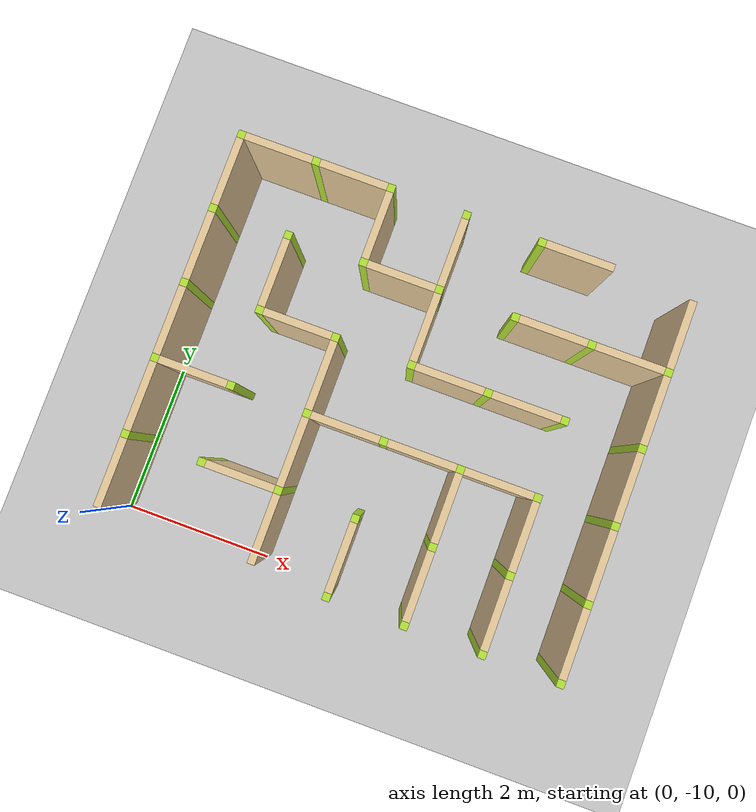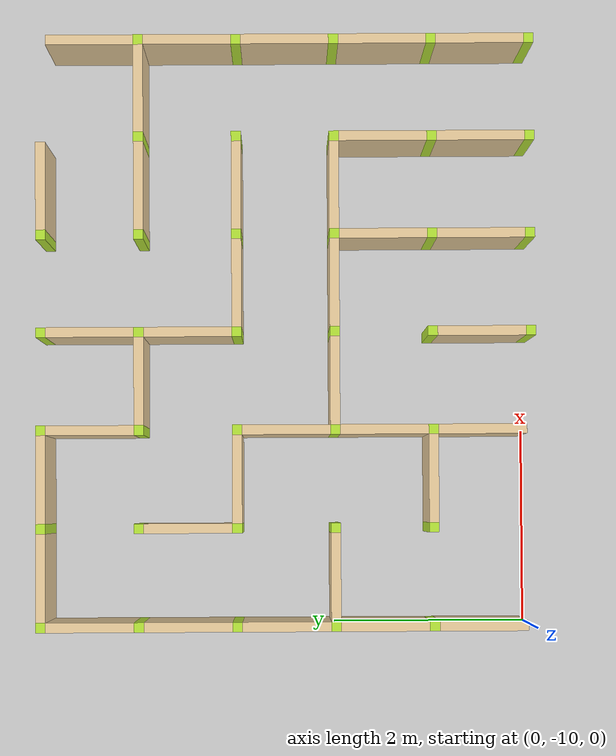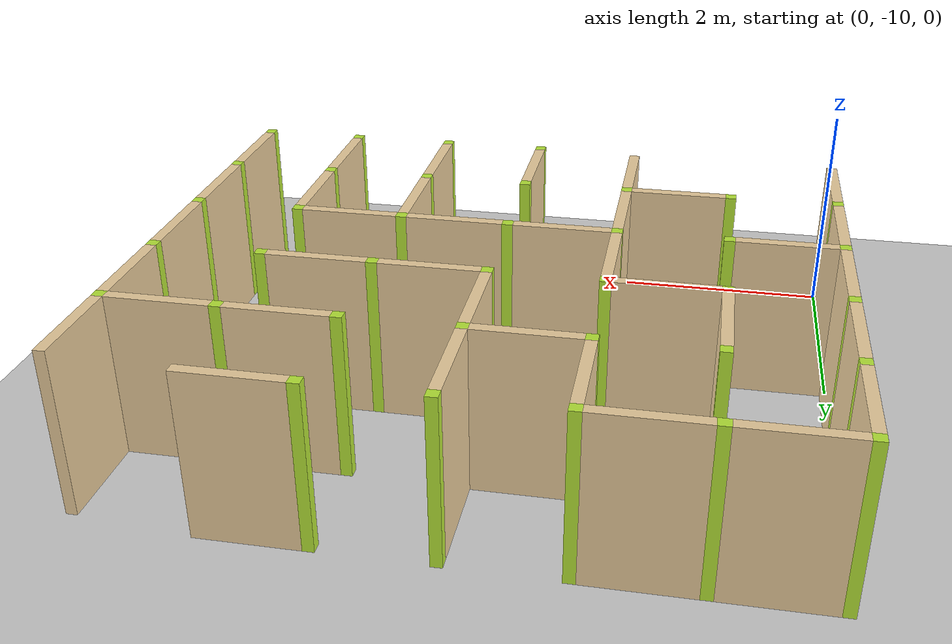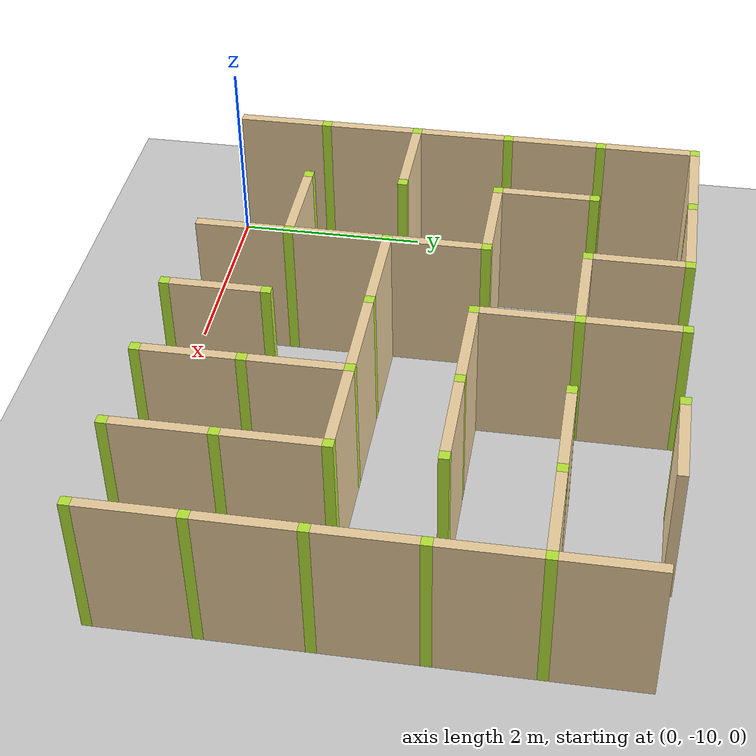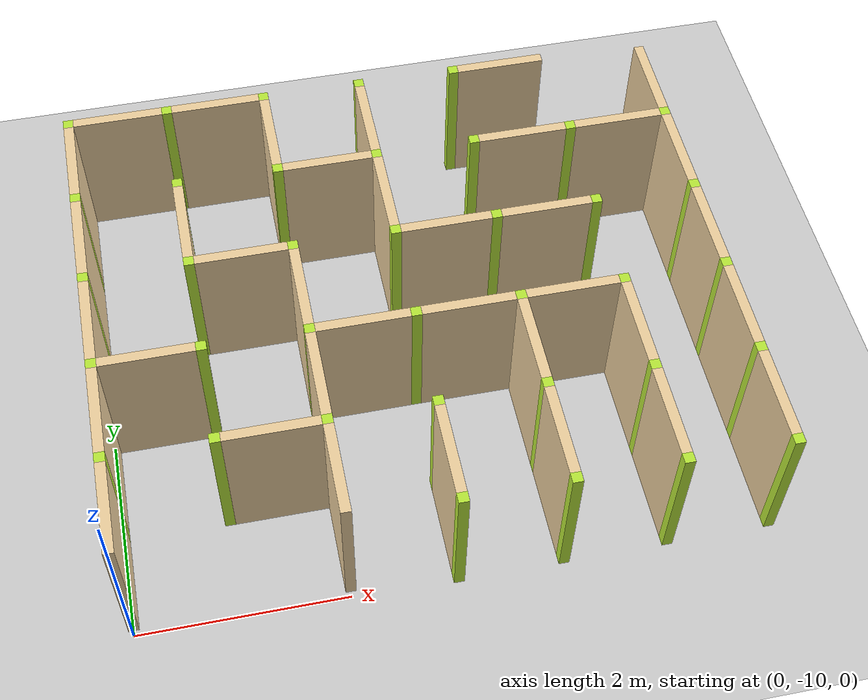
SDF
<sdf version="1.4">
 <world name="maze_world">
  <model name="ground">
   <static>true</static>
   <link name="ground_link">
    <collision name="collision1"><geometry><plane><normal>0 0 1</normal></plane></geometry></collision>
    <visual name="visual1"><geometry><plane><normal>0 0 1</normal><size>100 100</size></plane></geometry></visual>
   </link>
  </model>
  <model name="Untitled">
   <link name="Wall_0_5_h">
    <collision name="Wall_0_Collision">
     <geometry><box><size>0.9 0.1 1.5</size></box></geometry>
     <pose>0 0 0.75 0 -0 0</pose>
    </collision>
    <visual name="Wall_0_Visual">
     <pose>0 0 0.75 0 -0 0</pose>
     <geometry><box><size>0.9 0.1 1.5</size></box></geometry>
     <material>
      <script><uri>file://media/materials/scripts/gazebo.material</uri><name>Gazebo/Grey</name></script>
      <ambient>0.921569 0.807843 0.615686 1</ambient>
     </material>
     <meta><layer>0</layer></meta>
    </visual>
    <pose>0.5 -5 0 0 -0 0</pose>
   </link>
   <link name="Wall_0_5_v">
    <collision name="Wall_0_Collision">
     <geometry><box><size>0.9 0.1 1.5</size></box></geometry>
     <pose>0 0 0.75 0 -0 0</pose>
    </collision>
    <visual name="Wall_0_Visual">
     <pose>0 0 0.75 0 -0 0</pose>
     <geometry><box><size>0.9 0.1 1.5</size></box></geometry>
     <material>
      <script><uri>file://media/materials/scripts/gazebo.material</uri><name>Gazebo/Grey</name></script>
      <ambient>0.921569 0.807843 0.615686 1</ambient>
     </material>
     <meta><layer>0</layer></meta>
    </visual>
    <pose>0 -5.5 0 0 -0 1.5708</pose>
   </link>
   <link name="Joint_0_-5">
    <collision name="Wall_2_Collision">
     <geometry><box><size>0.1 0.1 1.5</size></box></geometry>
     <pose>0 0 0.75 0 -0 0</pose>
    </collision>
    <visual name="Wall_2_Visual">
     <pose>0 0 0.75 0 -0 0</pose>
     <geometry><box><size>0.1 0.1 1.5</size></box></geometry>
     <material>
      <script><uri>file://media/materials/scripts/gazebo.material</uri><name>Gazebo/Grey</name></script>
      <ambient>0.721569 0.907843 0.215686 1</ambient>
     </material>
     <meta><layer>0</layer></meta>
    </visual>
    <pose>0 -5 0 0 -0 0</pose>
   </link>
   <link name="Wall_1_5_h">
    <collision name="Wall_0_Collision">
     <geometry><box><size>0.9 0.1 1.5</size></box></geometry>
     <pose>0 0 0.75 0 -0 0</pose>
    </collision>
    <visual name="Wall_0_Visual">
     <pose>0 0 0.75 0 -0 0</pose>
     <geometry><box><size>0.9 0.1 1.5</size></box></geometry>
     <material>
      <script><uri>file://media/materials/scripts/gazebo.material</uri><name>Gazebo/Grey</name></script>
      <ambient>0.921569 0.807843 0.615686 1</ambient>
     </material>
     <meta><layer>0</layer></meta>
    </visual>
    <pose>1.5 -5 0 0 -0 0</pose>
   </link>
   <link name="Joint_1_-5">
    <collision name="Wall_2_Collision">
     <geometry><box><size>0.1 0.1 1.5</size></box></geometry>
     <pose>0 0 0.75 0 -0 0</pose>
    </collision>
    <visual name="Wall_2_Visual">
     <pose>0 0 0.75 0 -0 0</pose>
     <geometry><box><size>0.1 0.1 1.5</size></box></geometry>
     <material>
      <script><uri>file://media/materials/scripts/gazebo.material</uri><name>Gazebo/Grey</name></script>
      <ambient>0.721569 0.907843 0.215686 1</ambient>
     </material>
     <meta><layer>0</layer></meta>
    </visual>
    <pose>1 -5 0 0 -0 0</pose>
   </link>
   <link name="Wall_2_5_v">
    <collision name="Wall_0_Collision">
     <geometry><box><size>0.9 0.1 1.5</size></box></geometry>
     <pose>0 0 0.75 0 -0 0</pose>
    </collision>
    <visual name="Wall_0_Visual">
     <pose>0 0 0.75 0 -0 0</pose>
     <geometry><box><size>0.9 0.1 1.5</size></box></geometry>
     <material>
      <script><uri>file://media/materials/scripts/gazebo.material</uri><name>Gazebo/Grey</name></script>
      <ambient>0.921569 0.807843 0.615686 1</ambient>
     </material>
     <meta><layer>0</layer></meta>
    </visual>
    <pose>2 -5.5 0 0 -0 1.5708</pose>
   </link>
   <link name="Joint_2_-5">
    <collision name="Wall_2_Collision">
     <geometry><box><size>0.1 0.1 1.5</size></box></geometry>
     <pose>0 0 0.75 0 -0 0</pose>
    </collision>
    <visual name="Wall_2_Visual">
     <pose>0 0 0.75 0 -0 0</pose>
     <geometry><box><size>0.1 0.1 1.5</size></box></geometry>
     <material>
      <script><uri>file://media/materials/scripts/gazebo.material</uri><name>Gazebo/Grey</name></script>
      <ambient>0.721569 0.907843 0.215686 1</ambient>
     </material>
     <meta><layer>0</layer></meta>
    </visual>
    <pose>2 -5 0 0 -0 0</pose>
   </link>
   <link name="Wall_3_5_v">
    <collision name="Wall_0_Collision">
     <geometry><box><size>0.9 0.1 1.5</size></box></geometry>
     <pose>0 0 0.75 0 -0 0</pose>
    </collision>
    <visual name="Wall_0_Visual">
     <pose>0 0 0.75 0 -0 0</pose>
     <geometry><box><size>0.9 0.1 1.5</size></box></geometry>
     <material>
      <script><uri>file://media/materials/scripts/gazebo.material</uri><name>Gazebo/Grey</name></script>
      <ambient>0.921569 0.807843 0.615686 1</ambient>
     </material>
     <meta><layer>0</layer></meta>
    </visual>
    <pose>3 -5.5 0 0 -0 1.5708</pose>
   </link>
   <link name="Joint_3_-5">
    <collision name="Wall_2_Collision">
     <geometry><box><size>0.1 0.1 1.5</size></box></geometry>
     <pose>0 0 0.75 0 -0 0</pose>
    </collision>
    <visual name="Wall_2_Visual">
     <pose>0 0 0.75 0 -0 0</pose>
     <geometry><box><size>0.1 0.1 1.5</size></box></geometry>
     <material>
      <script><uri>file://media/materials/scripts/gazebo.material</uri><name>Gazebo/Grey</name></script>
      <ambient>0.721569 0.907843 0.215686 1</ambient>
     </material>
     <meta><layer>0</layer></meta>
    </visual>
    <pose>3 -5 0 0 -0 0</pose>
   </link>
   <link name="Wall_4_5_h">
    <collision name="Wall_0_Collision">
     <geometry><box><size>0.9 0.1 1.5</size></box></geometry>
     <pose>0 0 0.75 0 -0 0</pose>
    </collision>
    <visual name="Wall_0_Visual">
     <pose>0 0 0.75 0 -0 0</pose>
     <geometry><box><size>0.9 0.1 1.5</size></box></geometry>
     <material>
      <script><uri>file://media/materials/scripts/gazebo.material</uri><name>Gazebo/Grey</name></script>
      <ambient>0.921569 0.807843 0.615686 1</ambient>
     </material>
     <meta><layer>0</layer></meta>
    </visual>
    <pose>4.5 -5 0 0 -0 0</pose>
   </link>
   <link name="Joint_4_-5">
    <collision name="Wall_2_Collision">
     <geometry><box><size>0.1 0.1 1.5</size></box></geometry>
     <pose>0 0 0.75 0 -0 0</pose>
    </collision>
    <visual name="Wall_2_Visual">
     <pose>0 0 0.75 0 -0 0</pose>
     <geometry><box><size>0.1 0.1 1.5</size></box></geometry>
     <material>
      <script><uri>file://media/materials/scripts/gazebo.material</uri><name>Gazebo/Grey</name></script>
      <ambient>0.721569 0.907843 0.215686 1</ambient>
     </material>
     <meta><layer>0</layer></meta>
    </visual>
    <pose>4 -5 0 0 -0 0</pose>
   </link>
   <link name="Wall_6_5_v">
    <collision name="Wall_0_Collision">
     <geometry><box><size>0.9 0.1 1.5</size></box></geometry>
     <pose>0 0 0.75 0 -0 0</pose>
    </collision>
    <visual name="Wall_0_Visual">
     <pose>0 0 0.75 0 -0 0</pose>
     <geometry><box><size>0.9 0.1 1.5</size></box></geometry>
     <material>
      <script><uri>file://media/materials/scripts/gazebo.material</uri><name>Gazebo/Grey</name></script>
      <ambient>0.921569 0.807843 0.615686 1</ambient>
     </material>
     <meta><layer>0</layer></meta>
    </visual>
    <pose>6 -5.5 0 0 -0 1.5708</pose>
   </link>
   <link name="Wall_0_6_v">
    <collision name="Wall_0_Collision">
     <geometry><box><size>0.9 0.1 1.5</size></box></geometry>
     <pose>0 0 0.75 0 -0 0</pose>
    </collision>
    <visual name="Wall_0_Visual">
     <pose>0 0 0.75 0 -0 0</pose>
     <geometry><box><size>0.9 0.1 1.5</size></box></geometry>
     <material>
      <script><uri>file://media/materials/scripts/gazebo.material</uri><name>Gazebo/Grey</name></script>
      <ambient>0.921569 0.807843 0.615686 1</ambient>
     </material>
     <meta><layer>0</layer></meta>
    </visual>
    <pose>0 -6.5 0 0 -0 1.5708</pose>
   </link>
   <link name="Joint_0_-6">
    <collision name="Wall_2_Collision">
     <geometry><box><size>0.1 0.1 1.5</size></box></geometry>
     <pose>0 0 0.75 0 -0 0</pose>
    </collision>
    <visual name="Wall_2_Visual">
     <pose>0 0 0.75 0 -0 0</pose>
     <geometry><box><size>0.1 0.1 1.5</size></box></geometry>
     <material>
      <script><uri>file://media/materials/scripts/gazebo.material</uri><name>Gazebo/Grey</name></script>
      <ambient>0.721569 0.907843 0.215686 1</ambient>
     </material>
     <meta><layer>0</layer></meta>
    </visual>
    <pose>0 -6 0 0 -0 0</pose>
   </link>
   <link name="Wall_1_6_v">
    <collision name="Wall_0_Collision">
     <geometry><box><size>0.9 0.1 1.5</size></box></geometry>
     <pose>0 0 0.75 0 -0 0</pose>
    </collision>
    <visual name="Wall_0_Visual">
     <pose>0 0 0.75 0 -0 0</pose>
     <geometry><box><size>0.9 0.1 1.5</size></box></geometry>
     <material>
      <script><uri>file://media/materials/scripts/gazebo.material</uri><name>Gazebo/Grey</name></script>
      <ambient>0.921569 0.807843 0.615686 1</ambient>
     </material>
     <meta><layer>0</layer></meta>
    </visual>
    <pose>1 -6.5 0 0 -0 1.5708</pose>
   </link>
   <link name="Joint_1_-6">
    <collision name="Wall_2_Collision">
     <geometry><box><size>0.1 0.1 1.5</size></box></geometry>
     <pose>0 0 0.75 0 -0 0</pose>
    </collision>
    <visual name="Wall_2_Visual">
     <pose>0 0 0.75 0 -0 0</pose>
     <geometry><box><size>0.1 0.1 1.5</size></box></geometry>
     <material>
      <script><uri>file://media/materials/scripts/gazebo.material</uri><name>Gazebo/Grey</name></script>
      <ambient>0.721569 0.907843 0.215686 1</ambient>
     </material>
     <meta><layer>0</layer></meta>
    </visual>
    <pose>1 -6 0 0 -0 0</pose>
   </link>
   <link name="Wall_2_6_h">
    <collision name="Wall_0_Collision">
     <geometry><box><size>0.9 0.1 1.5</size></box></geometry>
     <pose>0 0 0.75 0 -0 0</pose>
    </collision>
    <visual name="Wall_0_Visual">
     <pose>0 0 0.75 0 -0 0</pose>
     <geometry><box><size>0.9 0.1 1.5</size></box></geometry>
     <material>
      <script><uri>file://media/materials/scripts/gazebo.material</uri><name>Gazebo/Grey</name></script>
      <ambient>0.921569 0.807843 0.615686 1</ambient>
     </material>
     <meta><layer>0</layer></meta>
    </visual>
    <pose>2.5 -6 0 0 -0 0</pose>
   </link>
   <link name="Joint_2_-6">
    <collision name="Wall_2_Collision">
     <geometry><box><size>0.1 0.1 1.5</size></box></geometry>
     <pose>0 0 0.75 0 -0 0</pose>
    </collision>
    <visual name="Wall_2_Visual">
     <pose>0 0 0.75 0 -0 0</pose>
     <geometry><box><size>0.1 0.1 1.5</size></box></geometry>
     <material>
      <script><uri>file://media/materials/scripts/gazebo.material</uri><name>Gazebo/Grey</name></script>
      <ambient>0.721569 0.907843 0.215686 1</ambient>
     </material>
     <meta><layer>0</layer></meta>
    </visual>
    <pose>2 -6 0 0 -0 0</pose>
   </link>
   <link name="Wall_3_6_v">
    <collision name="Wall_0_Collision">
     <geometry><box><size>0.9 0.1 1.5</size></box></geometry>
     <pose>0 0 0.75 0 -0 0</pose>
    </collision>
    <visual name="Wall_0_Visual">
     <pose>0 0 0.75 0 -0 0</pose>
     <geometry><box><size>0.9 0.1 1.5</size></box></geometry>
     <material>
      <script><uri>file://media/materials/scripts/gazebo.material</uri><name>Gazebo/Grey</name></script>
      <ambient>0.921569 0.807843 0.615686 1</ambient>
     </material>
     <meta><layer>0</layer></meta>
    </visual>
    <pose>3 -6.5 0 0 -0 1.5708</pose>
   </link>
   <link name="Joint_3_-6">
    <collision name="Wall_2_Collision">
     <geometry><box><size>0.1 0.1 1.5</size></box></geometry>
     <pose>0 0 0.75 0 -0 0</pose>
    </collision>
    <visual name="Wall_2_Visual">
     <pose>0 0 0.75 0 -0 0</pose>
     <geometry><box><size>0.1 0.1 1.5</size></box></geometry>
     <material>
      <script><uri>file://media/materials/scripts/gazebo.material</uri><name>Gazebo/Grey</name></script>
      <ambient>0.721569 0.907843 0.215686 1</ambient>
     </material>
     <meta><layer>0</layer></meta>
    </visual>
    <pose>3 -6 0 0 -0 0</pose>
   </link>
   <link name="Wall_4_6_h">
    <collision name="Wall_0_Collision">
     <geometry><box><size>0.9 0.1 1.5</size></box></geometry>
     <pose>0 0 0.75 0 -0 0</pose>
    </collision>
    <visual name="Wall_0_Visual">
     <pose>0 0 0.75 0 -0 0</pose>
     <geometry><box><size>0.9 0.1 1.5</size></box></geometry>
     <material>
      <script><uri>file://media/materials/scripts/gazebo.material</uri><name>Gazebo/Grey</name></script>
      <ambient>0.921569 0.807843 0.615686 1</ambient>
     </material>
     <meta><layer>0</layer></meta>
    </visual>
    <pose>4.5 -6 0 0 -0 0</pose>
   </link>
   <link name="Joint_4_-6">
    <collision name="Wall_2_Collision">
     <geometry><box><size>0.1 0.1 1.5</size></box></geometry>
     <pose>0 0 0.75 0 -0 0</pose>
    </collision>
    <visual name="Wall_2_Visual">
     <pose>0 0 0.75 0 -0 0</pose>
     <geometry><box><size>0.1 0.1 1.5</size></box></geometry>
     <material>
      <script><uri>file://media/materials/scripts/gazebo.material</uri><name>Gazebo/Grey</name></script>
      <ambient>0.721569 0.907843 0.215686 1</ambient>
     </material>
     <meta><layer>0</layer></meta>
    </visual>
    <pose>4 -6 0 0 -0 0</pose>
   </link>
   <link name="Wall_5_6_h">
    <collision name="Wall_0_Collision">
     <geometry><box><size>0.9 0.1 1.5</size></box></geometry>
     <pose>0 0 0.75 0 -0 0</pose>
    </collision>
    <visual name="Wall_0_Visual">
     <pose>0 0 0.75 0 -0 0</pose>
     <geometry><box><size>0.9 0.1 1.5</size></box></geometry>
     <material>
      <script><uri>file://media/materials/scripts/gazebo.material</uri><name>Gazebo/Grey</name></script>
      <ambient>0.921569 0.807843 0.615686 1</ambient>
     </material>
     <meta><layer>0</layer></meta>
    </visual>
    <pose>5.5 -6 0 0 -0 0</pose>
   </link>
   <link name="Joint_5_-6">
    <collision name="Wall_2_Collision">
     <geometry><box><size>0.1 0.1 1.5</size></box></geometry>
     <pose>0 0 0.75 0 -0 0</pose>
    </collision>
    <visual name="Wall_2_Visual">
     <pose>0 0 0.75 0 -0 0</pose>
     <geometry><box><size>0.1 0.1 1.5</size></box></geometry>
     <material>
      <script><uri>file://media/materials/scripts/gazebo.material</uri><name>Gazebo/Grey</name></script>
      <ambient>0.721569 0.907843 0.215686 1</ambient>
     </material>
     <meta><layer>0</layer></meta>
    </visual>
    <pose>5 -6 0 0 -0 0</pose>
   </link>
   <link name="Wall_6_6_v">
    <collision name="Wall_0_Collision">
     <geometry><box><size>0.9 0.1 1.5</size></box></geometry>
     <pose>0 0 0.75 0 -0 0</pose>
    </collision>
    <visual name="Wall_0_Visual">
     <pose>0 0 0.75 0 -0 0</pose>
     <geometry><box><size>0.9 0.1 1.5</size></box></geometry>
     <material>
      <script><uri>file://media/materials/scripts/gazebo.material</uri><name>Gazebo/Grey</name></script>
      <ambient>0.921569 0.807843 0.615686 1</ambient>
     </material>
     <meta><layer>0</layer></meta>
    </visual>
    <pose>6 -6.5 0 0 -0 1.5708</pose>
   </link>
   <link name="Joint_6_-6">
    <collision name="Wall_2_Collision">
     <geometry><box><size>0.1 0.1 1.5</size></box></geometry>
     <pose>0 0 0.75 0 -0 0</pose>
    </collision>
    <visual name="Wall_2_Visual">
     <pose>0 0 0.75 0 -0 0</pose>
     <geometry><box><size>0.1 0.1 1.5</size></box></geometry>
     <material>
      <script><uri>file://media/materials/scripts/gazebo.material</uri><name>Gazebo/Grey</name></script>
      <ambient>0.721569 0.907843 0.215686 1</ambient>
     </material>
     <meta><layer>0</layer></meta>
    </visual>
    <pose>6 -6 0 0 -0 0</pose>
   </link>
   <link name="Wall_0_7_v">
    <collision name="Wall_0_Collision">
     <geometry><box><size>0.9 0.1 1.5</size></box></geometry>
     <pose>0 0 0.75 0 -0 0</pose>
    </collision>
    <visual name="Wall_0_Visual">
     <pose>0 0 0.75 0 -0 0</pose>
     <geometry><box><size>0.9 0.1 1.5</size></box></geometry>
     <material>
      <script><uri>file://media/materials/scripts/gazebo.material</uri><name>Gazebo/Grey</name></script>
      <ambient>0.921569 0.807843 0.615686 1</ambient>
     </material>
     <meta><layer>0</layer></meta>
    </visual>
    <pose>0 -7.5 0 0 -0 1.5708</pose>
   </link>
   <link name="Joint_0_-7">
    <collision name="Wall_2_Collision">
     <geometry><box><size>0.1 0.1 1.5</size></box></geometry>
     <pose>0 0 0.75 0 -0 0</pose>
    </collision>
    <visual name="Wall_2_Visual">
     <pose>0 0 0.75 0 -0 0</pose>
     <geometry><box><size>0.1 0.1 1.5</size></box></geometry>
     <material>
      <script><uri>file://media/materials/scripts/gazebo.material</uri><name>Gazebo/Grey</name></script>
      <ambient>0.721569 0.907843 0.215686 1</ambient>
     </material>
     <meta><layer>0</layer></meta>
    </visual>
    <pose>0 -7 0 0 -0 0</pose>
   </link>
   <link name="Wall_1_7_h">
    <collision name="Wall_0_Collision">
     <geometry><box><size>0.9 0.1 1.5</size></box></geometry>
     <pose>0 0 0.75 0 -0 0</pose>
    </collision>
    <visual name="Wall_0_Visual">
     <pose>0 0 0.75 0 -0 0</pose>
     <geometry><box><size>0.9 0.1 1.5</size></box></geometry>
     <material>
      <script><uri>file://media/materials/scripts/gazebo.material</uri><name>Gazebo/Grey</name></script>
      <ambient>0.921569 0.807843 0.615686 1</ambient>
     </material>
     <meta><layer>0</layer></meta>
    </visual>
    <pose>1.5 -7 0 0 -0 0</pose>
   </link>
   <link name="Joint_1_-7">
    <collision name="Wall_2_Collision">
     <geometry><box><size>0.1 0.1 1.5</size></box></geometry>
     <pose>0 0 0.75 0 -0 0</pose>
    </collision>
    <visual name="Wall_2_Visual">
     <pose>0 0 0.75 0 -0 0</pose>
     <geometry><box><size>0.1 0.1 1.5</size></box></geometry>
     <material>
      <script><uri>file://media/materials/scripts/gazebo.material</uri><name>Gazebo/Grey</name></script>
      <ambient>0.721569 0.907843 0.215686 1</ambient>
     </material>
     <meta><layer>0</layer></meta>
    </visual>
    <pose>1 -7 0 0 -0 0</pose>
   </link>
   <link name="Wall_2_7_v">
    <collision name="Wall_0_Collision">
     <geometry><box><size>0.9 0.1 1.5</size></box></geometry>
     <pose>0 0 0.75 0 -0 0</pose>
    </collision>
    <visual name="Wall_0_Visual">
     <pose>0 0 0.75 0 -0 0</pose>
     <geometry><box><size>0.9 0.1 1.5</size></box></geometry>
     <material>
      <script><uri>file://media/materials/scripts/gazebo.material</uri><name>Gazebo/Grey</name></script>
      <ambient>0.921569 0.807843 0.615686 1</ambient>
     </material>
     <meta><layer>0</layer></meta>
    </visual>
    <pose>2 -7.5 0 0 -0 1.5708</pose>
   </link>
   <link name="Joint_2_-7">
    <collision name="Wall_2_Collision">
     <geometry><box><size>0.1 0.1 1.5</size></box></geometry>
     <pose>0 0 0.75 0 -0 0</pose>
    </collision>
    <visual name="Wall_2_Visual">
     <pose>0 0 0.75 0 -0 0</pose>
     <geometry><box><size>0.1 0.1 1.5</size></box></geometry>
     <material>
      <script><uri>file://media/materials/scripts/gazebo.material</uri><name>Gazebo/Grey</name></script>
      <ambient>0.721569 0.907843 0.215686 1</ambient>
     </material>
     <meta><layer>0</layer></meta>
    </visual>
    <pose>2 -7 0 0 -0 0</pose>
   </link>
   <link name="Wall_3_7_h">
    <collision name="Wall_0_Collision">
     <geometry><box><size>0.9 0.1 1.5</size></box></geometry>
     <pose>0 0 0.75 0 -0 0</pose>
    </collision>
    <visual name="Wall_0_Visual">
     <pose>0 0 0.75 0 -0 0</pose>
     <geometry><box><size>0.9 0.1 1.5</size></box></geometry>
     <material>
      <script><uri>file://media/materials/scripts/gazebo.material</uri><name>Gazebo/Grey</name></script>
      <ambient>0.921569 0.807843 0.615686 1</ambient>
     </material>
     <meta><layer>0</layer></meta>
    </visual>
    <pose>3.5 -7 0 0 -0 0</pose>
   </link>
   <link name="Joint_3_-7">
    <collision name="Wall_2_Collision">
     <geometry><box><size>0.1 0.1 1.5</size></box></geometry>
     <pose>0 0 0.75 0 -0 0</pose>
    </collision>
    <visual name="Wall_2_Visual">
     <pose>0 0 0.75 0 -0 0</pose>
     <geometry><box><size>0.1 0.1 1.5</size></box></geometry>
     <material>
      <script><uri>file://media/materials/scripts/gazebo.material</uri><name>Gazebo/Grey</name></script>
      <ambient>0.721569 0.907843 0.215686 1</ambient>
     </material>
     <meta><layer>0</layer></meta>
    </visual>
    <pose>3 -7 0 0 -0 0</pose>
   </link>
   <link name="Wall_4_7_h">
    <collision name="Wall_0_Collision">
     <geometry><box><size>0.9 0.1 1.5</size></box></geometry>
     <pose>0 0 0.75 0 -0 0</pose>
    </collision>
    <visual name="Wall_0_Visual">
     <pose>0 0 0.75 0 -0 0</pose>
     <geometry><box><size>0.9 0.1 1.5</size></box></geometry>
     <material>
      <script><uri>file://media/materials/scripts/gazebo.material</uri><name>Gazebo/Grey</name></script>
      <ambient>0.921569 0.807843 0.615686 1</ambient>
     </material>
     <meta><layer>0</layer></meta>
    </visual>
    <pose>4.5 -7 0 0 -0 0</pose>
   </link>
   <link name="Joint_4_-7">
    <collision name="Wall_2_Collision">
     <geometry><box><size>0.1 0.1 1.5</size></box></geometry>
     <pose>0 0 0.75 0 -0 0</pose>
    </collision>
    <visual name="Wall_2_Visual">
     <pose>0 0 0.75 0 -0 0</pose>
     <geometry><box><size>0.1 0.1 1.5</size></box></geometry>
     <material>
      <script><uri>file://media/materials/scripts/gazebo.material</uri><name>Gazebo/Grey</name></script>
      <ambient>0.721569 0.907843 0.215686 1</ambient>
     </material>
     <meta><layer>0</layer></meta>
    </visual>
    <pose>4 -7 0 0 -0 0</pose>
   </link>
   <link name="Joint_5_-7">
    <collision name="Wall_2_Collision">
     <geometry><box><size>0.1 0.1 1.5</size></box></geometry>
     <pose>0 0 0.75 0 -0 0</pose>
    </collision>
    <visual name="Wall_2_Visual">
     <pose>0 0 0.75 0 -0 0</pose>
     <geometry><box><size>0.1 0.1 1.5</size></box></geometry>
     <material>
      <script><uri>file://media/materials/scripts/gazebo.material</uri><name>Gazebo/Grey</name></script>
      <ambient>0.721569 0.907843 0.215686 1</ambient>
     </material>
     <meta><layer>0</layer></meta>
    </visual>
    <pose>5 -7 0 0 -0 0</pose>
   </link>
   <link name="Wall_6_7_v">
    <collision name="Wall_0_Collision">
     <geometry><box><size>0.9 0.1 1.5</size></box></geometry>
     <pose>0 0 0.75 0 -0 0</pose>
    </collision>
    <visual name="Wall_0_Visual">
     <pose>0 0 0.75 0 -0 0</pose>
     <geometry><box><size>0.9 0.1 1.5</size></box></geometry>
     <material>
      <script><uri>file://media/materials/scripts/gazebo.material</uri><name>Gazebo/Grey</name></script>
      <ambient>0.921569 0.807843 0.615686 1</ambient>
     </material>
     <meta><layer>0</layer></meta>
    </visual>
    <pose>6 -7.5 0 0 -0 1.5708</pose>
   </link>
   <link name="Joint_6_-7">
    <collision name="Wall_2_Collision">
     <geometry><box><size>0.1 0.1 1.5</size></box></geometry>
     <pose>0 0 0.75 0 -0 0</pose>
    </collision>
    <visual name="Wall_2_Visual">
     <pose>0 0 0.75 0 -0 0</pose>
     <geometry><box><size>0.1 0.1 1.5</size></box></geometry>
     <material>
      <script><uri>file://media/materials/scripts/gazebo.material</uri><name>Gazebo/Grey</name></script>
      <ambient>0.721569 0.907843 0.215686 1</ambient>
     </material>
     <meta><layer>0</layer></meta>
    </visual>
    <pose>6 -7 0 0 -0 0</pose>
   </link>
   <link name="Wall_0_8_h">
    <collision name="Wall_0_Collision">
     <geometry><box><size>0.9 0.1 1.5</size></box></geometry>
     <pose>0 0 0.75 0 -0 0</pose>
    </collision>
    <visual name="Wall_0_Visual">
     <pose>0 0 0.75 0 -0 0</pose>
     <geometry><box><size>0.9 0.1 1.5</size></box></geometry>
     <material>
      <script><uri>file://media/materials/scripts/gazebo.material</uri><name>Gazebo/Grey</name></script>
      <ambient>0.921569 0.807843 0.615686 1</ambient>
     </material>
     <meta><layer>0</layer></meta>
    </visual>
    <pose>0.5 -8 0 0 -0 0</pose>
   </link>
   <link name="Wall_0_8_v">
    <collision name="Wall_0_Collision">
     <geometry><box><size>0.9 0.1 1.5</size></box></geometry>
     <pose>0 0 0.75 0 -0 0</pose>
    </collision>
    <visual name="Wall_0_Visual">
     <pose>0 0 0.75 0 -0 0</pose>
     <geometry><box><size>0.9 0.1 1.5</size></box></geometry>
     <material>
      <script><uri>file://media/materials/scripts/gazebo.material</uri><name>Gazebo/Grey</name></script>
      <ambient>0.921569 0.807843 0.615686 1</ambient>
     </material>
     <meta><layer>0</layer></meta>
    </visual>
    <pose>0 -8.5 0 0 -0 1.5708</pose>
   </link>
   <link name="Joint_0_-8">
    <collision name="Wall_2_Collision">
     <geometry><box><size>0.1 0.1 1.5</size></box></geometry>
     <pose>0 0 0.75 0 -0 0</pose>
    </collision>
    <visual name="Wall_2_Visual">
     <pose>0 0 0.75 0 -0 0</pose>
     <geometry><box><size>0.1 0.1 1.5</size></box></geometry>
     <material>
      <script><uri>file://media/materials/scripts/gazebo.material</uri><name>Gazebo/Grey</name></script>
      <ambient>0.721569 0.907843 0.215686 1</ambient>
     </material>
     <meta><layer>0</layer></meta>
    </visual>
    <pose>0 -8 0 0 -0 0</pose>
   </link>
   <link name="Joint_1_-8">
    <collision name="Wall_2_Collision">
     <geometry><box><size>0.1 0.1 1.5</size></box></geometry>
     <pose>0 0 0.75 0 -0 0</pose>
    </collision>
    <visual name="Wall_2_Visual">
     <pose>0 0 0.75 0 -0 0</pose>
     <geometry><box><size>0.1 0.1 1.5</size></box></geometry>
     <material>
      <script><uri>file://media/materials/scripts/gazebo.material</uri><name>Gazebo/Grey</name></script>
      <ambient>0.721569 0.907843 0.215686 1</ambient>
     </material>
     <meta><layer>0</layer></meta>
    </visual>
    <pose>1 -8 0 0 -0 0</pose>
   </link>
   <link name="Wall_2_8_h">
    <collision name="Wall_0_Collision">
     <geometry><box><size>0.9 0.1 1.5</size></box></geometry>
     <pose>0 0 0.75 0 -0 0</pose>
    </collision>
    <visual name="Wall_0_Visual">
     <pose>0 0 0.75 0 -0 0</pose>
     <geometry><box><size>0.9 0.1 1.5</size></box></geometry>
     <material>
      <script><uri>file://media/materials/scripts/gazebo.material</uri><name>Gazebo/Grey</name></script>
      <ambient>0.921569 0.807843 0.615686 1</ambient>
     </material>
     <meta><layer>0</layer></meta>
    </visual>
    <pose>2.5 -8 0 0 -0 0</pose>
   </link>
   <link name="Wall_2_8_v">
    <collision name="Wall_0_Collision">
     <geometry><box><size>0.9 0.1 1.5</size></box></geometry>
     <pose>0 0 0.75 0 -0 0</pose>
    </collision>
    <visual name="Wall_0_Visual">
     <pose>0 0 0.75 0 -0 0</pose>
     <geometry><box><size>0.9 0.1 1.5</size></box></geometry>
     <material>
      <script><uri>file://media/materials/scripts/gazebo.material</uri><name>Gazebo/Grey</name></script>
      <ambient>0.921569 0.807843 0.615686 1</ambient>
     </material>
     <meta><layer>0</layer></meta>
    </visual>
    <pose>2 -8.5 0 0 -0 1.5708</pose>
   </link>
   <link name="Joint_2_-8">
    <collision name="Wall_2_Collision">
     <geometry><box><size>0.1 0.1 1.5</size></box></geometry>
     <pose>0 0 0.75 0 -0 0</pose>
    </collision>
    <visual name="Wall_2_Visual">
     <pose>0 0 0.75 0 -0 0</pose>
     <geometry><box><size>0.1 0.1 1.5</size></box></geometry>
     <material>
      <script><uri>file://media/materials/scripts/gazebo.material</uri><name>Gazebo/Grey</name></script>
      <ambient>0.721569 0.907843 0.215686 1</ambient>
     </material>
     <meta><layer>0</layer></meta>
    </visual>
    <pose>2 -8 0 0 -0 0</pose>
   </link>
   <link name="Wall_3_8_h">
    <collision name="Wall_0_Collision">
     <geometry><box><size>0.9 0.1 1.5</size></box></geometry>
     <pose>0 0 0.75 0 -0 0</pose>
    </collision>
    <visual name="Wall_0_Visual">
     <pose>0 0 0.75 0 -0 0</pose>
     <geometry><box><size>0.9 0.1 1.5</size></box></geometry>
     <material>
      <script><uri>file://media/materials/scripts/gazebo.material</uri><name>Gazebo/Grey</name></script>
      <ambient>0.921569 0.807843 0.615686 1</ambient>
     </material>
     <meta><layer>0</layer></meta>
    </visual>
    <pose>3.5 -8 0 0 -0 0</pose>
   </link>
   <link name="Joint_3_-8">
    <collision name="Wall_2_Collision">
     <geometry><box><size>0.1 0.1 1.5</size></box></geometry>
     <pose>0 0 0.75 0 -0 0</pose>
    </collision>
    <visual name="Wall_2_Visual">
     <pose>0 0 0.75 0 -0 0</pose>
     <geometry><box><size>0.1 0.1 1.5</size></box></geometry>
     <material>
      <script><uri>file://media/materials/scripts/gazebo.material</uri><name>Gazebo/Grey</name></script>
      <ambient>0.721569 0.907843 0.215686 1</ambient>
     </material>
     <meta><layer>0</layer></meta>
    </visual>
    <pose>3 -8 0 0 -0 0</pose>
   </link>
   <link name="Wall_4_8_h">
    <collision name="Wall_0_Collision">
     <geometry><box><size>0.9 0.1 1.5</size></box></geometry>
     <pose>0 0 0.75 0 -0 0</pose>
    </collision>
    <visual name="Wall_0_Visual">
     <pose>0 0 0.75 0 -0 0</pose>
     <geometry><box><size>0.9 0.1 1.5</size></box></geometry>
     <material>
      <script><uri>file://media/materials/scripts/gazebo.material</uri><name>Gazebo/Grey</name></script>
      <ambient>0.921569 0.807843 0.615686 1</ambient>
     </material>
     <meta><layer>0</layer></meta>
    </visual>
    <pose>4.5 -8 0 0 -0 0</pose>
   </link>
   <link name="Wall_4_8_v">
    <collision name="Wall_0_Collision">
     <geometry><box><size>0.9 0.1 1.5</size></box></geometry>
     <pose>0 0 0.75 0 -0 0</pose>
    </collision>
    <visual name="Wall_0_Visual">
     <pose>0 0 0.75 0 -0 0</pose>
     <geometry><box><size>0.9 0.1 1.5</size></box></geometry>
     <material>
      <script><uri>file://media/materials/scripts/gazebo.material</uri><name>Gazebo/Grey</name></script>
      <ambient>0.921569 0.807843 0.615686 1</ambient>
     </material>
     <meta><layer>0</layer></meta>
    </visual>
    <pose>4 -8.5 0 0 -0 1.5708</pose>
   </link>
   <link name="Joint_4_-8">
    <collision name="Wall_2_Collision">
     <geometry><box><size>0.1 0.1 1.5</size></box></geometry>
     <pose>0 0 0.75 0 -0 0</pose>
    </collision>
    <visual name="Wall_2_Visual">
     <pose>0 0 0.75 0 -0 0</pose>
     <geometry><box><size>0.1 0.1 1.5</size></box></geometry>
     <material>
      <script><uri>file://media/materials/scripts/gazebo.material</uri><name>Gazebo/Grey</name></script>
      <ambient>0.721569 0.907843 0.215686 1</ambient>
     </material>
     <meta><layer>0</layer></meta>
    </visual>
    <pose>4 -8 0 0 -0 0</pose>
   </link>
   <link name="Wall_5_8_v">
    <collision name="Wall_0_Collision">
     <geometry><box><size>0.9 0.1 1.5</size></box></geometry>
     <pose>0 0 0.75 0 -0 0</pose>
    </collision>
    <visual name="Wall_0_Visual">
     <pose>0 0 0.75 0 -0 0</pose>
     <geometry><box><size>0.9 0.1 1.5</size></box></geometry>
     <material>
      <script><uri>file://media/materials/scripts/gazebo.material</uri><name>Gazebo/Grey</name></script>
      <ambient>0.921569 0.807843 0.615686 1</ambient>
     </material>
     <meta><layer>0</layer></meta>
    </visual>
    <pose>5 -8.5 0 0 -0 1.5708</pose>
   </link>
   <link name="Joint_5_-8">
    <collision name="Wall_2_Collision">
     <geometry><box><size>0.1 0.1 1.5</size></box></geometry>
     <pose>0 0 0.75 0 -0 0</pose>
    </collision>
    <visual name="Wall_2_Visual">
     <pose>0 0 0.75 0 -0 0</pose>
     <geometry><box><size>0.1 0.1 1.5</size></box></geometry>
     <material>
      <script><uri>file://media/materials/scripts/gazebo.material</uri><name>Gazebo/Grey</name></script>
      <ambient>0.721569 0.907843 0.215686 1</ambient>
     </material>
     <meta><layer>0</layer></meta>
    </visual>
    <pose>5 -8 0 0 -0 0</pose>
   </link>
   <link name="Wall_6_8_v">
    <collision name="Wall_0_Collision">
     <geometry><box><size>0.9 0.1 1.5</size></box></geometry>
     <pose>0 0 0.75 0 -0 0</pose>
    </collision>
    <visual name="Wall_0_Visual">
     <pose>0 0 0.75 0 -0 0</pose>
     <geometry><box><size>0.9 0.1 1.5</size></box></geometry>
     <material>
      <script><uri>file://media/materials/scripts/gazebo.material</uri><name>Gazebo/Grey</name></script>
      <ambient>0.921569 0.807843 0.615686 1</ambient>
     </material>
     <meta><layer>0</layer></meta>
    </visual>
    <pose>6 -8.5 0 0 -0 1.5708</pose>
   </link>
   <link name="Joint_6_-8">
    <collision name="Wall_2_Collision">
     <geometry><box><size>0.1 0.1 1.5</size></box></geometry>
     <pose>0 0 0.75 0 -0 0</pose>
    </collision>
    <visual name="Wall_2_Visual">
     <pose>0 0 0.75 0 -0 0</pose>
     <geometry><box><size>0.1 0.1 1.5</size></box></geometry>
     <material>
      <script><uri>file://media/materials/scripts/gazebo.material</uri><name>Gazebo/Grey</name></script>
      <ambient>0.721569 0.907843 0.215686 1</ambient>
     </material>
     <meta><layer>0</layer></meta>
    </visual>
    <pose>6 -8 0 0 -0 0</pose>
   </link>
   <link name="Wall_0_9_v">
    <collision name="Wall_0_Collision">
     <geometry><box><size>0.9 0.1 1.5</size></box></geometry>
     <pose>0 0 0.75 0 -0 0</pose>
    </collision>
    <visual name="Wall_0_Visual">
     <pose>0 0 0.75 0 -0 0</pose>
     <geometry><box><size>0.9 0.1 1.5</size></box></geometry>
     <material>
      <script><uri>file://media/materials/scripts/gazebo.material</uri><name>Gazebo/Grey</name></script>
      <ambient>0.921569 0.807843 0.615686 1</ambient>
     </material>
     <meta><layer>0</layer></meta>
    </visual>
    <pose>0 -9.5 0 0 -0 1.5708</pose>
   </link>
   <link name="Joint_0_-9">
    <collision name="Wall_2_Collision">
     <geometry><box><size>0.1 0.1 1.5</size></box></geometry>
     <pose>0 0 0.75 0 -0 0</pose>
    </collision>
    <visual name="Wall_2_Visual">
     <pose>0 0 0.75 0 -0 0</pose>
     <geometry><box><size>0.1 0.1 1.5</size></box></geometry>
     <material>
      <script><uri>file://media/materials/scripts/gazebo.material</uri><name>Gazebo/Grey</name></script>
      <ambient>0.721569 0.907843 0.215686 1</ambient>
     </material>
     <meta><layer>0</layer></meta>
    </visual>
    <pose>0 -9 0 0 -0 0</pose>
   </link>
   <link name="Wall_1_9_h">
    <collision name="Wall_0_Collision">
     <geometry><box><size>0.9 0.1 1.5</size></box></geometry>
     <pose>0 0 0.75 0 -0 0</pose>
    </collision>
    <visual name="Wall_0_Visual">
     <pose>0 0 0.75 0 -0 0</pose>
     <geometry><box><size>0.9 0.1 1.5</size></box></geometry>
     <material>
      <script><uri>file://media/materials/scripts/gazebo.material</uri><name>Gazebo/Grey</name></script>
      <ambient>0.921569 0.807843 0.615686 1</ambient>
     </material>
     <meta><layer>0</layer></meta>
    </visual>
    <pose>1.5 -9 0 0 -0 0</pose>
   </link>
   <link name="Joint_1_-9">
    <collision name="Wall_2_Collision">
     <geometry><box><size>0.1 0.1 1.5</size></box></geometry>
     <pose>0 0 0.75 0 -0 0</pose>
    </collision>
    <visual name="Wall_2_Visual">
     <pose>0 0 0.75 0 -0 0</pose>
     <geometry><box><size>0.1 0.1 1.5</size></box></geometry>
     <material>
      <script><uri>file://media/materials/scripts/gazebo.material</uri><name>Gazebo/Grey</name></script>
      <ambient>0.721569 0.907843 0.215686 1</ambient>
     </material>
     <meta><layer>0</layer></meta>
    </visual>
    <pose>1 -9 0 0 -0 0</pose>
   </link>
   <link name="Wall_2_9_v">
    <collision name="Wall_0_Collision">
     <geometry><box><size>0.9 0.1 1.5</size></box></geometry>
     <pose>0 0 0.75 0 -0 0</pose>
    </collision>
    <visual name="Wall_0_Visual">
     <pose>0 0 0.75 0 -0 0</pose>
     <geometry><box><size>0.9 0.1 1.5</size></box></geometry>
     <material>
      <script><uri>file://media/materials/scripts/gazebo.material</uri><name>Gazebo/Grey</name></script>
      <ambient>0.921569 0.807843 0.615686 1</ambient>
     </material>
     <meta><layer>0</layer></meta>
    </visual>
    <pose>2 -9.5 0 0 -0 1.5708</pose>
   </link>
   <link name="Joint_2_-9">
    <collision name="Wall_2_Collision">
     <geometry><box><size>0.1 0.1 1.5</size></box></geometry>
     <pose>0 0 0.75 0 -0 0</pose>
    </collision>
    <visual name="Wall_2_Visual">
     <pose>0 0 0.75 0 -0 0</pose>
     <geometry><box><size>0.1 0.1 1.5</size></box></geometry>
     <material>
      <script><uri>file://media/materials/scripts/gazebo.material</uri><name>Gazebo/Grey</name></script>
      <ambient>0.721569 0.907843 0.215686 1</ambient>
     </material>
     <meta><layer>0</layer></meta>
    </visual>
    <pose>2 -9 0 0 -0 0</pose>
   </link>
   <link name="Wall_3_9_v">
    <collision name="Wall_0_Collision">
     <geometry><box><size>0.9 0.1 1.5</size></box></geometry>
     <pose>0 0 0.75 0 -0 0</pose>
    </collision>
    <visual name="Wall_0_Visual">
     <pose>0 0 0.75 0 -0 0</pose>
     <geometry><box><size>0.9 0.1 1.5</size></box></geometry>
     <material>
      <script><uri>file://media/materials/scripts/gazebo.material</uri><name>Gazebo/Grey</name></script>
      <ambient>0.921569 0.807843 0.615686 1</ambient>
     </material>
     <meta><layer>0</layer></meta>
    </visual>
    <pose>3 -9.5 0 0 -0 1.5708</pose>
   </link>
   <link name="Joint_3_-9">
    <collision name="Wall_2_Collision">
     <geometry><box><size>0.1 0.1 1.5</size></box></geometry>
     <pose>0 0 0.75 0 -0 0</pose>
    </collision>
    <visual name="Wall_2_Visual">
     <pose>0 0 0.75 0 -0 0</pose>
     <geometry><box><size>0.1 0.1 1.5</size></box></geometry>
     <material>
      <script><uri>file://media/materials/scripts/gazebo.material</uri><name>Gazebo/Grey</name></script>
      <ambient>0.721569 0.907843 0.215686 1</ambient>
     </material>
     <meta><layer>0</layer></meta>
    </visual>
    <pose>3 -9 0 0 -0 0</pose>
   </link>
   <link name="Wall_4_9_v">
    <collision name="Wall_0_Collision">
     <geometry><box><size>0.9 0.1 1.5</size></box></geometry>
     <pose>0 0 0.75 0 -0 0</pose>
    </collision>
    <visual name="Wall_0_Visual">
     <pose>0 0 0.75 0 -0 0</pose>
     <geometry><box><size>0.9 0.1 1.5</size></box></geometry>
     <material>
      <script><uri>file://media/materials/scripts/gazebo.material</uri><name>Gazebo/Grey</name></script>
      <ambient>0.921569 0.807843 0.615686 1</ambient>
     </material>
     <meta><layer>0</layer></meta>
    </visual>
    <pose>4 -9.5 0 0 -0 1.5708</pose>
   </link>
   <link name="Joint_4_-9">
    <collision name="Wall_2_Collision">
     <geometry><box><size>0.1 0.1 1.5</size></box></geometry>
     <pose>0 0 0.75 0 -0 0</pose>
    </collision>
    <visual name="Wall_2_Visual">
     <pose>0 0 0.75 0 -0 0</pose>
     <geometry><box><size>0.1 0.1 1.5</size></box></geometry>
     <material>
      <script><uri>file://media/materials/scripts/gazebo.material</uri><name>Gazebo/Grey</name></script>
      <ambient>0.721569 0.907843 0.215686 1</ambient>
     </material>
     <meta><layer>0</layer></meta>
    </visual>
    <pose>4 -9 0 0 -0 0</pose>
   </link>
   <link name="Wall_5_9_v">
    <collision name="Wall_0_Collision">
     <geometry><box><size>0.9 0.1 1.5</size></box></geometry>
     <pose>0 0 0.75 0 -0 0</pose>
    </collision>
    <visual name="Wall_0_Visual">
     <pose>0 0 0.75 0 -0 0</pose>
     <geometry><box><size>0.9 0.1 1.5</size></box></geometry>
     <material>
      <script><uri>file://media/materials/scripts/gazebo.material</uri><name>Gazebo/Grey</name></script>
      <ambient>0.921569 0.807843 0.615686 1</ambient>
     </material>
     <meta><layer>0</layer></meta>
    </visual>
    <pose>5 -9.5 0 0 -0 1.5708</pose>
   </link>
   <link name="Joint_5_-9">
    <collision name="Wall_2_Collision">
     <geometry><box><size>0.1 0.1 1.5</size></box></geometry>
     <pose>0 0 0.75 0 -0 0</pose>
    </collision>
    <visual name="Wall_2_Visual">
     <pose>0 0 0.75 0 -0 0</pose>
     <geometry><box><size>0.1 0.1 1.5</size></box></geometry>
     <material>
      <script><uri>file://media/materials/scripts/gazebo.material</uri><name>Gazebo/Grey</name></script>
      <ambient>0.721569 0.907843 0.215686 1</ambient>
     </material>
     <meta><layer>0</layer></meta>
    </visual>
    <pose>5 -9 0 0 -0 0</pose>
   </link>
   <link name="Wall_6_9_v">
    <collision name="Wall_0_Collision">
     <geometry><box><size>0.9 0.1 1.5</size></box></geometry>
     <pose>0 0 0.75 0 -0 0</pose>
    </collision>
    <visual name="Wall_0_Visual">
     <pose>0 0 0.75 0 -0 0</pose>
     <geometry><box><size>0.9 0.1 1.5</size></box></geometry>
     <material>
      <script><uri>file://media/materials/scripts/gazebo.material</uri><name>Gazebo/Grey</name></script>
      <ambient>0.921569 0.807843 0.615686 1</ambient>
     </material>
     <meta><layer>0</layer></meta>
    </visual>
    <pose>6 -9.5 0 0 -0 1.5708</pose>
   </link>
   <link name="Joint_6_-9">
    <collision name="Wall_2_Collision">
     <geometry><box><size>0.1 0.1 1.5</size></box></geometry>
     <pose>0 0 0.75 0 -0 0</pose>
    </collision>
    <visual name="Wall_2_Visual">
     <pose>0 0 0.75 0 -0 0</pose>
     <geometry><box><size>0.1 0.1 1.5</size></box></geometry>
     <material>
      <script><uri>file://media/materials/scripts/gazebo.material</uri><name>Gazebo/Grey</name></script>
      <ambient>0.721569 0.907843 0.215686 1</ambient>
     </material>
     <meta><layer>0</layer></meta>
    </visual>
    <pose>6 -9 0 0 -0 0</pose>
   </link>
   <link name="Joint_3_-10">
    <collision name="Wall_2_Collision">
     <geometry><box><size>0.1 0.1 1.5</size></box></geometry>
     <pose>0 0 0.75 0 -0 0</pose>
    </collision>
    <visual name="Wall_2_Visual">
     <pose>0 0 0.75 0 -0 0</pose>
     <geometry><box><size>0.1 0.1 1.5</size></box></geometry>
     <material>
      <script><uri>file://media/materials/scripts/gazebo.material</uri><name>Gazebo/Grey</name></script>
      <ambient>0.721569 0.907843 0.215686 1</ambient>
     </material>
     <meta><layer>0</layer></meta>
    </visual>
    <pose>3 -10 0 0 -0 0</pose>
   </link>
   <link name="Joint_4_-10">
    <collision name="Wall_2_Collision">
     <geometry><box><size>0.1 0.1 1.5</size></box></geometry>
     <pose>0 0 0.75 0 -0 0</pose>
    </collision>
    <visual name="Wall_2_Visual">
     <pose>0 0 0.75 0 -0 0</pose>
     <geometry><box><size>0.1 0.1 1.5</size></box></geometry>
     <material>
      <script><uri>file://media/materials/scripts/gazebo.material</uri><name>Gazebo/Grey</name></script>
      <ambient>0.721569 0.907843 0.215686 1</ambient>
     </material>
     <meta><layer>0</layer></meta>
    </visual>
    <pose>4 -10 0 0 -0 0</pose>
   </link>
   <link name="Joint_5_-10">
    <collision name="Wall_2_Collision">
     <geometry><box><size>0.1 0.1 1.5</size></box></geometry>
     <pose>0 0 0.75 0 -0 0</pose>
    </collision>
    <visual name="Wall_2_Visual">
     <pose>0 0 0.75 0 -0 0</pose>
     <geometry><box><size>0.1 0.1 1.5</size></box></geometry>
     <material>
      <script><uri>file://media/materials/scripts/gazebo.material</uri><name>Gazebo/Grey</name></script>
      <ambient>0.721569 0.907843 0.215686 1</ambient>
     </material>
     <meta><layer>0</layer></meta>
    </visual>
    <pose>5 -10 0 0 -0 0</pose>
   </link>
   <link name="Joint_6_-10">
    <collision name="Wall_2_Collision">
     <geometry><box><size>0.1 0.1 1.5</size></box></geometry>
     <pose>0 0 0.75 0 -0 0</pose>
    </collision>
    <visual name="Wall_2_Visual">
     <pose>0 0 0.75 0 -0 0</pose>
     <geometry><box><size>0.1 0.1 1.5</size></box></geometry>
     <material>
      <script><uri>file://media/materials/scripts/gazebo.material</uri><name>Gazebo/Grey</name></script>
      <ambient>0.721569 0.907843 0.215686 1</ambient>
     </material>
     <meta><layer>0</layer></meta>
    </visual>
    <pose>6 -10 0 0 -0 0</pose>
   </link>
   <static>1</static>
  </model>
 </world>
</sdf>
